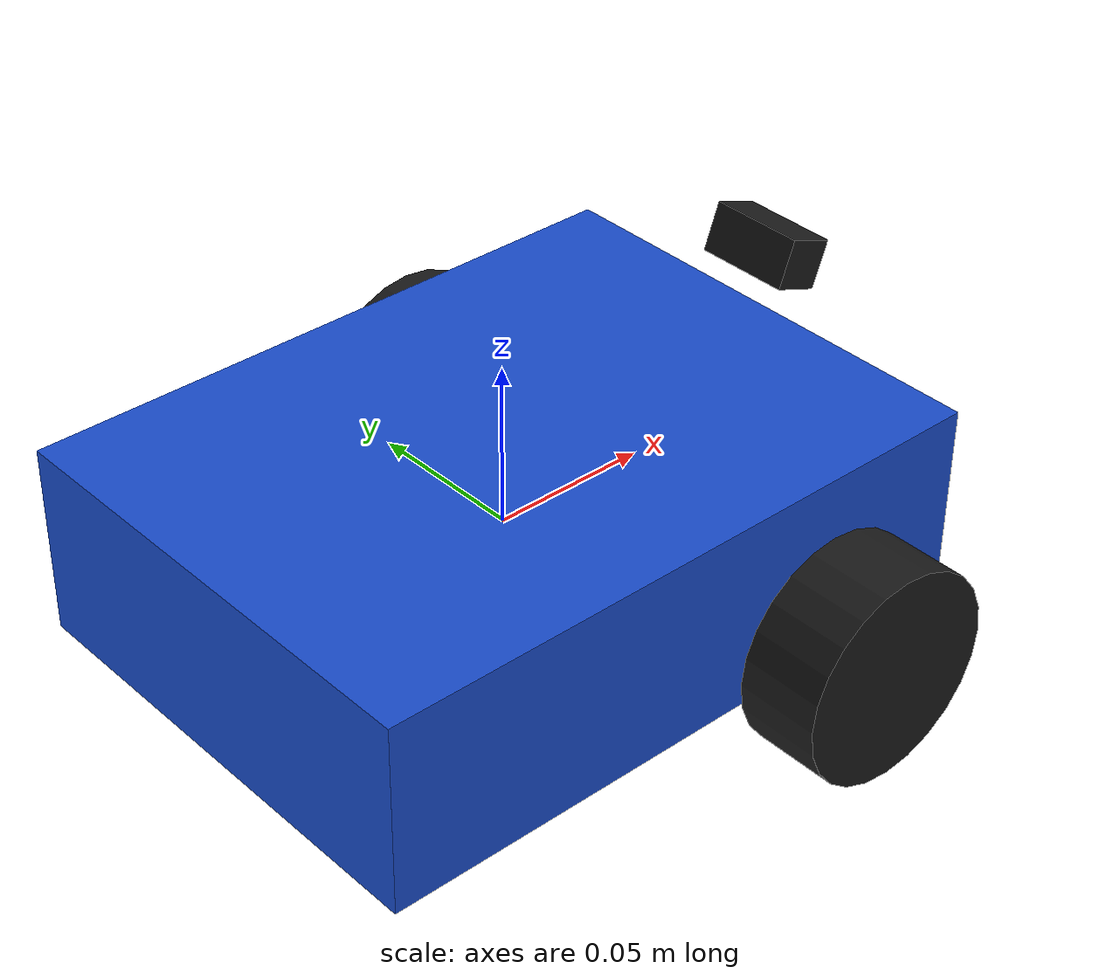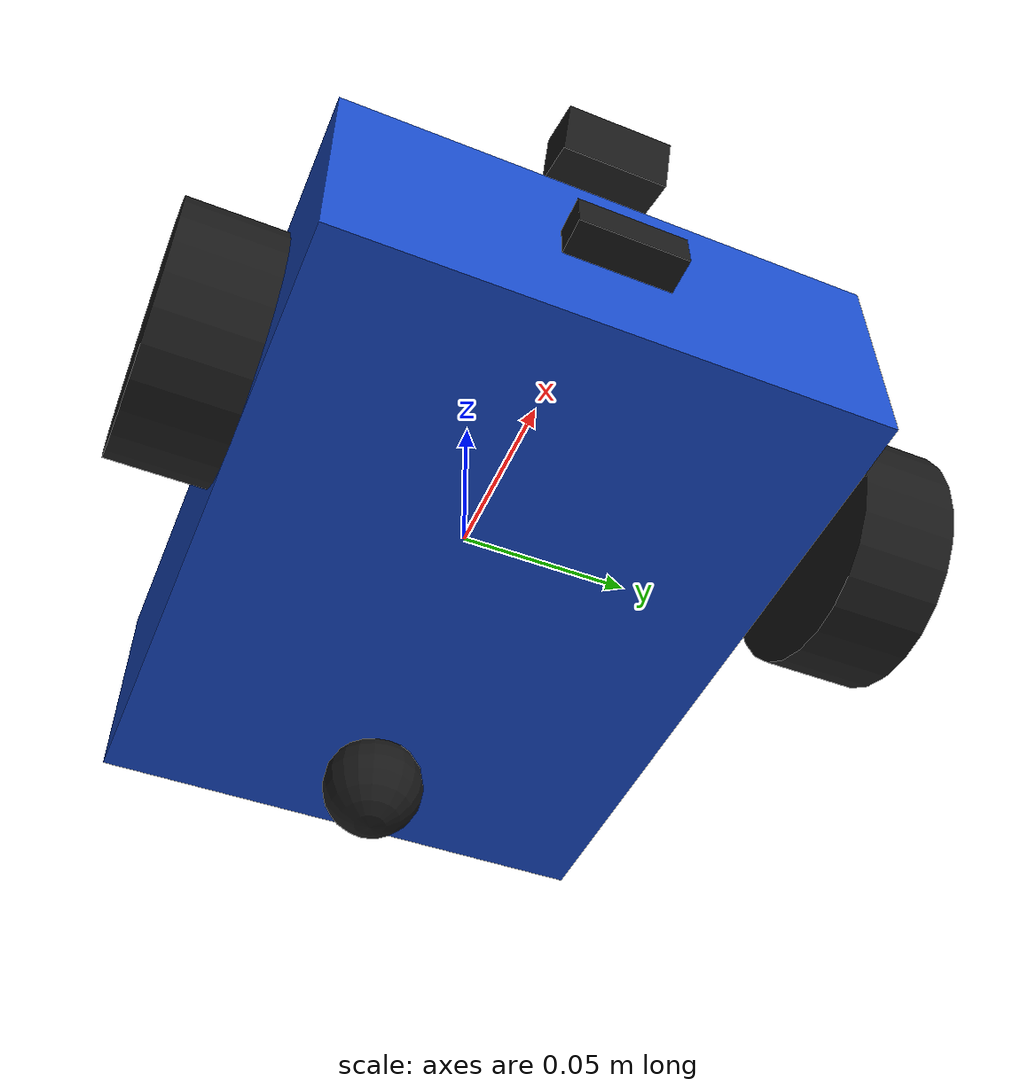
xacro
<?xml version="1.0"?>
<robot xmlns:xacro="http://www.ros.org/wiki/xacro" name="car">

  <!-- Sizes in meters -->
  <xacro:property name="chassis_x" value="0.20"/>
  <xacro:property name="chassis_y" value="0.15"/>
  <xacro:property name="chassis_z" value="0.06"/>
  <xacro:property name="wheel_r" value="0.033"/>
  <xacro:property name="wheel_w" value="0.026"/>
  <xacro:property name="wheel_y" value="0.0905"/>
  <xacro:property name="caster_r" value="0.015"/>

  <material name="blue"><color rgba="0.1 0.3 0.8 1"/></material>
  <material name="black"><color rgba="0.1 0.1 0.1 1"/></material>

  <!-- Inertia formulas (Gazebo needs mass and inertia for physics) -->
  <xacro:macro name="box_inertia" params="m x y z">
    <inertial>
      <mass value="${m}"/>
      <inertia ixx="${m*(y*y+z*z)/12}" ixy="0" ixz="0"
               iyy="${m*(x*x+z*z)/12}" iyz="0" izz="${m*(x*x+y*y)/12}"/>
    </inertial>
  </xacro:macro>
  <xacro:macro name="cylinder_inertia" params="m r h">
    <inertial>
      <mass value="${m}"/>
      <inertia ixx="${m*(3*r*r+h*h)/12}" ixy="0" ixz="0"
               iyy="${m*(3*r*r+h*h)/12}" iyz="0" izz="${m*r*r/2}"/>
    </inertial>
  </xacro:macro>
  <xacro:macro name="sphere_inertia" params="m r">
    <inertial>
      <mass value="${m}"/>
      <inertia ixx="${2*m*r*r/5}" ixy="0" ixz="0"
               iyy="${2*m*r*r/5}" iyz="0" izz="${2*m*r*r/5}"/>
    </inertial>
  </xacro:macro>

  <!-- Base and chassis -->
  <link name="base_link"/>

  <link name="chassis">
    <visual>
      <geometry><box size="${chassis_x} ${chassis_y} ${chassis_z}"/></geometry>
      <material name="blue"/>
    </visual>
    <collision>
      <geometry><box size="${chassis_x} ${chassis_y} ${chassis_z}"/></geometry>
    </collision>
    <xacro:box_inertia m="1.0" x="${chassis_x}" y="${chassis_y}" z="${chassis_z}"/>
  </link>

  <joint name="chassis_joint" type="fixed">
    <parent link="base_link"/>
    <child link="chassis"/>
    <origin xyz="0 0 0"/>
  </joint>

  <!-- Two driven wheels -->
  <xacro:macro name="wheel" params="prefix side">
    <link name="${prefix}_wheel">
      <visual>
        <geometry><cylinder radius="${wheel_r}" length="${wheel_w}"/></geometry>
        <material name="black"/>
      </visual>
      <collision>
        <geometry><cylinder radius="${wheel_r}" length="${wheel_w}"/></geometry>
      </collision>
      <xacro:cylinder_inertia m="0.05" r="${wheel_r}" h="${wheel_w}"/>
    </link>
    <joint name="${prefix}_wheel_joint" type="continuous">
      <parent link="base_link"/>
      <child link="${prefix}_wheel"/>
      <origin xyz="0.05 ${side*wheel_y} -0.02" rpy="${-pi/2} 0 0"/>
      <axis xyz="0 0 1"/>
    </joint>
  </xacro:macro>

  <xacro:wheel prefix="left" side="1"/>
  <xacro:wheel prefix="right" side="-1"/>

  <!-- Caster wheel at the back (slides without friction) -->
  <link name="caster">
    <visual>
      <geometry><sphere radius="${caster_r}"/></geometry>
      <material name="black"/>
    </visual>
    <collision>
      <geometry><sphere radius="${caster_r}"/></geometry>
    </collision>
    <xacro:sphere_inertia m="0.02" r="${caster_r}"/>
  </link>

  <joint name="caster_joint" type="fixed">
    <parent link="base_link"/>
    <child link="caster"/>
    <origin xyz="-0.07 0 ${-0.02 - wheel_r + caster_r}"/>
  </joint>

  <gazebo reference="caster">
    <mu1>0.001</mu1>
    <mu2>0.001</mu2>
  </gazebo>

    <!-- ===== Sensors ===== -->

  <!-- Front camera, tilted down to see the line on the floor -->
  <link name="camera_link">
    <visual>
      <geometry><box size="0.015 0.03 0.015"/></geometry>
      <material name="black"/>
    </visual>
    <xacro:box_inertia m="0.01" x="0.015" y="0.03" z="0.015"/>
  </link>
  <joint name="camera_joint" type="fixed">
    <parent link="base_link"/>
    <child link="camera_link"/>
    <origin xyz="0.1 0 0.05" rpy="0 0.35 0"/>
  </joint>
  <gazebo reference="camera_link">
    <sensor name="camera" type="camera">
      <always_on>true</always_on>
      <update_rate>30</update_rate>
      <visualize>true</visualize>
      <topic>camera/image_raw</topic>
      <gz_frame_id>camera_link</gz_frame_id>
      <camera>
        <horizontal_fov>1.2</horizontal_fov>
        <image><width>320</width><height>240</height><format>R8G8B8</format></image>
        <clip><near>0.02</near><far>20</far></clip>
      </camera>
    </sensor>
  </gazebo>

  <!-- IMU in the middle of the car -->
  <link name="imu_link">
    <xacro:box_inertia m="0.01" x="0.01" y="0.01" z="0.01"/>
  </link>
  <joint name="imu_joint" type="fixed">
    <parent link="base_link"/>
    <child link="imu_link"/>
    <origin xyz="0 0 0"/>
  </joint>
  <gazebo reference="imu_link">
    <sensor name="imu" type="imu">
      <always_on>true</always_on>
      <update_rate>100</update_rate>
      <topic>imu</topic>
      <gz_frame_id>imu_link</gz_frame_id>
    </sensor>
  </gazebo>

  <!-- Front distance sensor: 5 rays, 4 m range -->
  <link name="range_link">
    <visual>
      <geometry><box size="0.01 0.03 0.01"/></geometry>
      <material name="black"/>
    </visual>
    <xacro:box_inertia m="0.01" x="0.01" y="0.03" z="0.01"/>
  </link>
  <joint name="range_joint" type="fixed">
    <parent link="base_link"/>
    <child link="range_link"/>
    <origin xyz="0.105 0 0"/>
  </joint>
  <gazebo reference="range_link">
    <sensor name="front_range" type="gpu_lidar">
      <always_on>true</always_on>
      <update_rate>20</update_rate>
      <visualize>true</visualize>
      <topic>front_scan</topic>
      <gz_frame_id>range_link</gz_frame_id>
      <lidar>
        <scan>
          <horizontal>
            <samples>5</samples>
            <resolution>1</resolution>
            <min_angle>-0.2</min_angle>
            <max_angle>0.2</max_angle>
          </horizontal>
        </scan>
        <range><min>0.05</min><max>4.0</max><resolution>0.01</resolution></range>
      </lidar>
    </sensor>
  </gazebo>
  <!-- Gazebo plugins: drive control and joint states -->
  <gazebo>
    <plugin filename="gz-sim-diff-drive-system" name="gz::sim::systems::DiffDrive">
      <left_joint>left_wheel_joint</left_joint>
      <right_joint>right_wheel_joint</right_joint>
      <wheel_separation>${2*wheel_y}</wheel_separation>
      <wheel_radius>${wheel_r}</wheel_radius>
      <max_linear_acceleration>1.0</max_linear_acceleration>
      <topic>cmd_vel</topic>
      <odom_topic>odom</odom_topic>
      <frame_id>odom</frame_id>
      <child_frame_id>base_link</child_frame_id>
      <odom_publish_frequency>30</odom_publish_frequency>
    </plugin>
    <plugin filename="gz-sim-joint-state-publisher-system" name="gz::sim::systems::JointStatePublisher">
      <topic>joint_states</topic>
    </plugin>
  </gazebo>

</robot>
